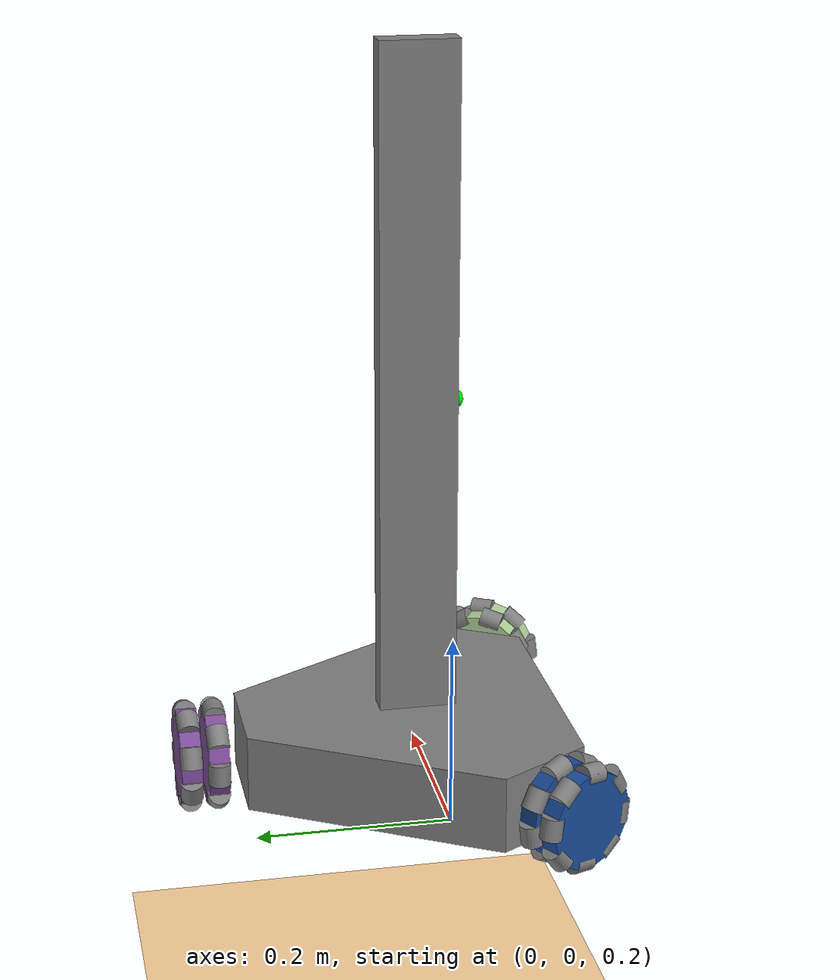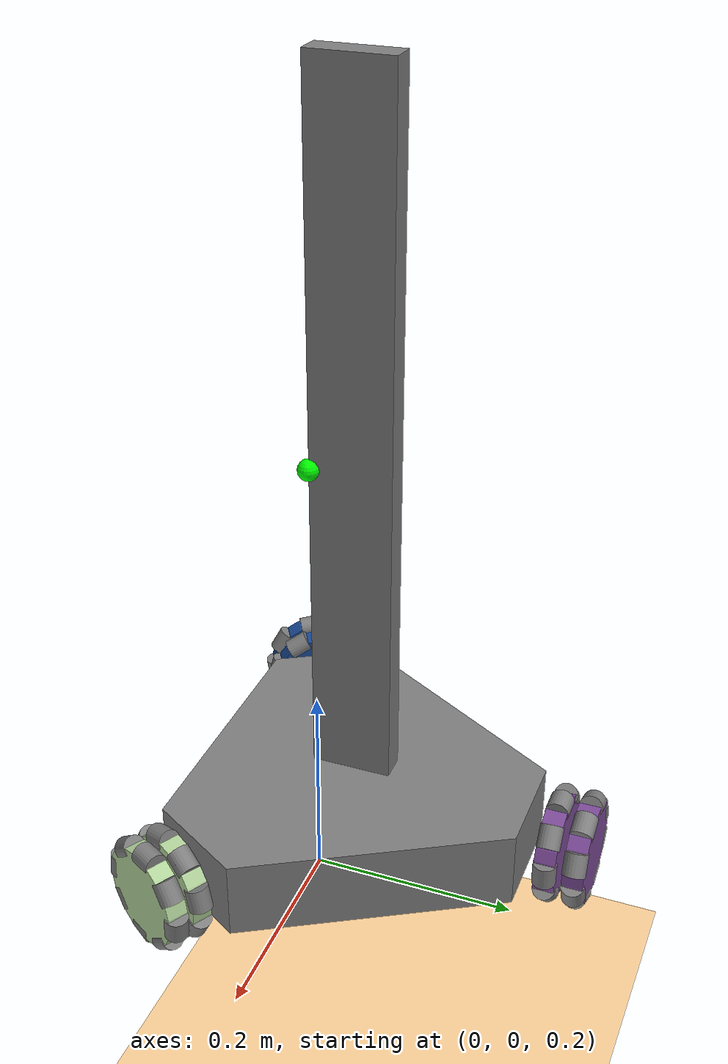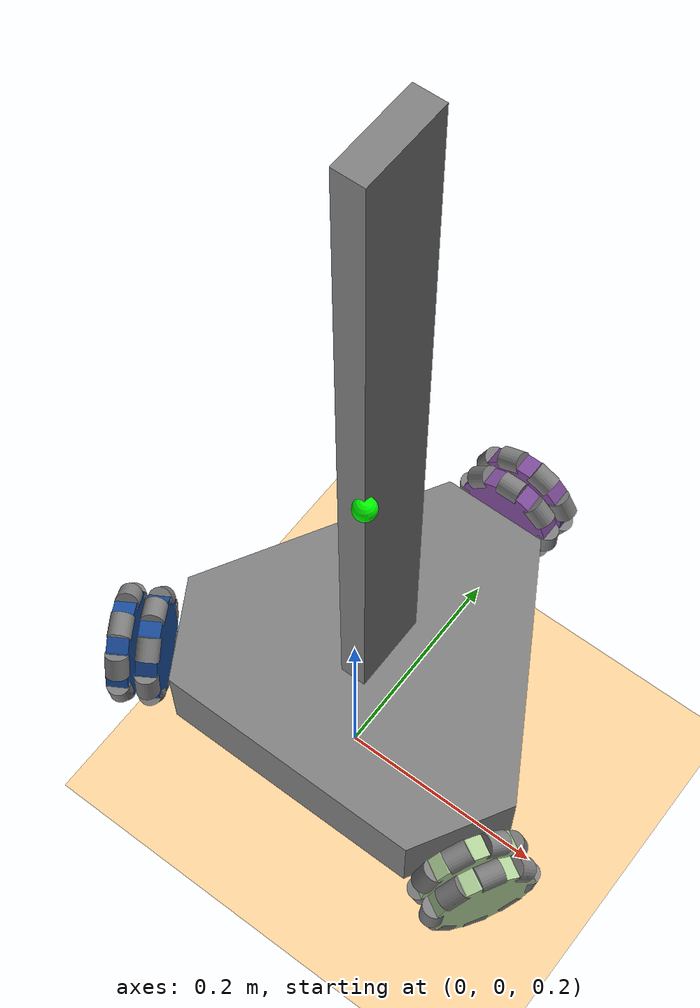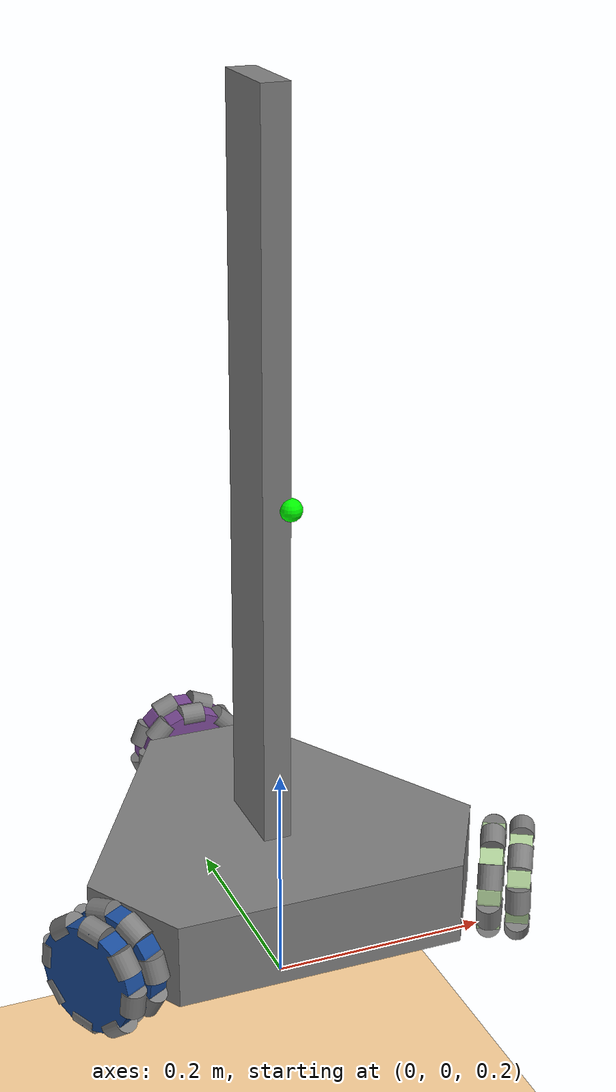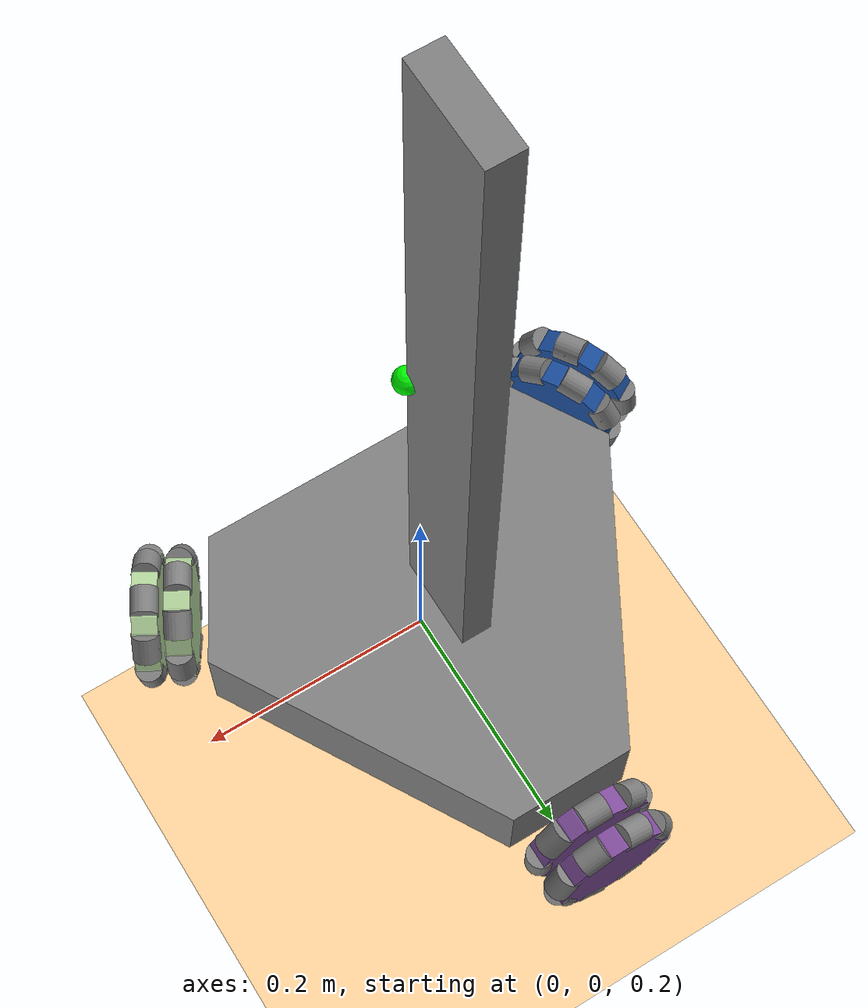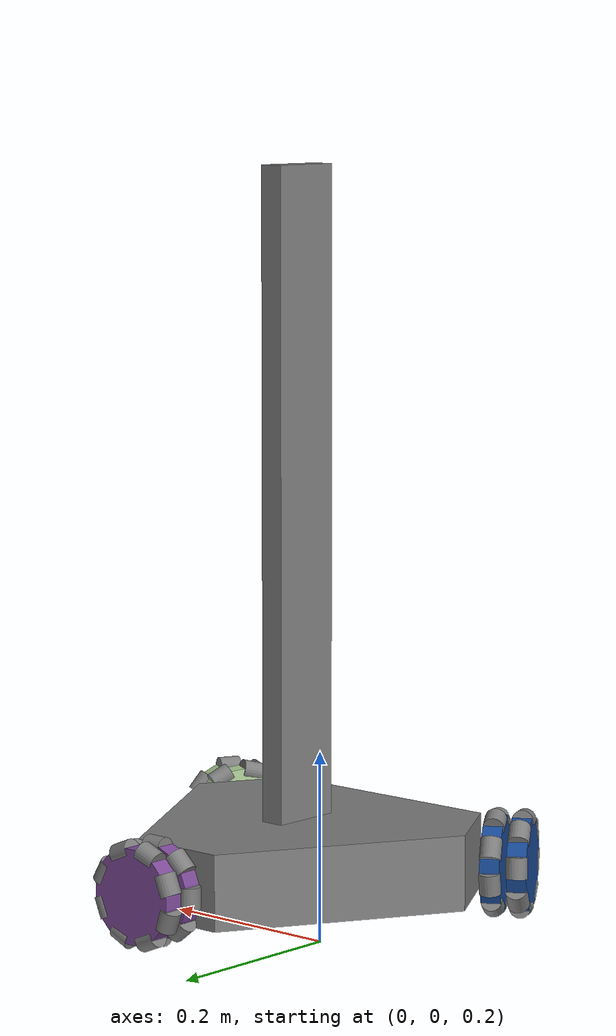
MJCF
<?xml version="1.0" encoding="utf-8"?>
<mujoco model="triangular_base">

	<!-- set some defaults for units and lighting -->
	<compiler angle="degree" meshdir="./stl_exports/"/>

	<option timestep=".00175"/>

	<!-- import our stl files -->
	<asset>
		<mesh name="baseplate" file="baseplate_robot-new.stl" />
		<mesh name="elevator" file="elevator-collapsed-new.stl" />
		<mesh name="wheel" file="wheel_for_mujoco.stl" />
	</asset>

	<!-- define our robot model -->
	<worldbody>
		<!-- set up a light pointing down on the robot -->
		<light directional="true" pos="-0.5 0.5 3" dir="0 0 -1" />
		<camera name="track_camera" mode="targetbodycom" target="base" euler="0 0 0" fovy="80" pos="0 0 2" />
		<!-- add a floor so we don't stare off into the abyss -->
		<geom name="floor" pos="0 0 0" size="50 50 50" type="plane" rgba="1 0.83 0.61 0.5"/>

		<!-- start building our model -->
		<body name="base" pos="0 0 -0.7">
			<joint name="joint_base" type="free" axis="0 0 1" frictionloss="1" damping="0.001" stiffness="0.2"/>
			<geom name="baseplate_robot" type="mesh" mesh="baseplate" pos="0 0 1" friction="0.5" />
			<inertial pos="-.05 0 0.0133" mass="5" diaginertia=".5 .5 1"/>

			<body name="elevator" pos=".01 0 1">
				<joint name="slide_y" type="slide" axis="0 1 0" range="-.001 .001"/>
				<geom name="elevator" type="mesh" mesh="elevator"/>
				<inertial pos="0 0 0.345" mass="0.2" diaginertia=".5 .5 1"/>
				<!-- Optional: Adding a site to specify sensor location -->
				<site name="base_site" pos="0 0 .35" size="0.01" type="sphere" rgba="0 1 0 1"/>
			</body>

			<!-- Attach wheels to the main body -->
			<!--							cos(15 degree)	sin(15 degree)-->
			<body name="wheel_1_body" pos=".175 -.07 1" quat="0.5 1 0 .866">
				<joint name="joint1" type="hinge" axis="0 0 -1" damping=".05"/>
				<geom type="cylinder" size=".048 .01" rgba=".7 0.83 0.61 1" />

				<inertial pos="0 0 0" mass=".096" diaginertia="0.5 0.5 1"/>

				<body name="wheel_1_omni0" pos="0 -.0435 0" quat="0 -1 0 1" >
					<joint name="joint1_omni0" type="hinge" axis="0 0 1" damping="0.001" frictionloss="0.3"/>
					<geom type="cylinder" size=".011 .011 .011" contype="1" conaffinity="0"/>

					<inertial pos="0 0 0" mass="0.001" diaginertia="0.00001 0.00001 0.00001"/>

				</body>

				<body name="wheel_1_omni1" pos="0 .0435 0" quat="0 -1 0 1">
					<joint name="joint1_omni1" type="hinge" axis="0 0 1" damping="0.001" frictionloss="0.3"/>
					<geom type="cylinder" size=".011 .011 .011" contype="1" conaffinity="0"/>

					<inertial pos="0 0 0" mass="0.001" diaginertia="0.00001 0.00001 0.00001"/>

				</body>

				<body name="wheel_1_omni2" pos=".0435 0 0" quat="1 1 0 0">
					<joint name="joint1_omni2" type="hinge" axis="0 0 1" damping="0.001" frictionloss="0.3"/>
					<geom type="cylinder" size=".011 .011 .011" contype="1" conaffinity="0"/>

					<inertial pos="0 0 0" mass=".001" diaginertia="0.00001 0.00001 0.00001"/>

				</body>

				<body name="wheel_1_omni3" pos="-.0435 0 0" quat="1 1 0 0">
					<joint name="joint1_omni3" type="hinge" axis="0 0 1" damping="0.001" frictionloss="0.3"/>
					<geom type="cylinder" size=".011 .011 .011" contype="1" conaffinity="0"/>

					<inertial pos="0 0 0" mass="0.001" diaginertia="0.00001 0.00001 0.00001"/>

				</body>

				<body name="wheel_1_omni4" pos="-.0312 -.0312 0" quat="0.676 0.227 0.661 -.233">
					<joint name="joint1_omni4" type="hinge" axis="0 0 1" damping="0.0001"/>
					<geom type="cylinder" size=".011 .011 .011" contype="1" conaffinity="0"/>

					<inertial pos="0 0 0" mass="0.001" diaginertia="0.00001 0.00001 0.00001"/>

				</body>

				<body name="wheel_1_omni5" pos=".0312 -.0312 0" quat="0.661 -0.268 0.645 .274">
					<joint name="joint1_omni5" type="hinge" axis="0 0 1" damping="0.001" frictionloss="0.3"/>
					<geom type="cylinder" size=".011 .011 .011" contype="1" conaffinity="0"/>

					<inertial pos="0 0 0" mass="0.001" diaginertia="0.00001 0.00001 0.00001"/>

				</body>

				<body name="wheel_1_omni6" pos=".0312 .0312 0" quat="0.276 -0.642 0.268 .663">
					<joint name="joint1_omni6" type="hinge" axis="0 0 1" damping="0.001" frictionloss="0.3"/>
					<geom type="cylinder" size=".011 .011 .011" contype="1" conaffinity="0"/>

					<inertial pos="0 0 0" mass="0.001" diaginertia="0.00001 0.00001 0.00001"/>

				</body>

				<body name="wheel_1_omni7" pos="-.0312 .0312 0" quat="-0.276 -0.642 -0.268 .663">
					<joint name="joint1_omni7" type="hinge" axis="0 0 1" damping="0.001" frictionloss="0.3"/>
					<geom type="cylinder" size=".011 .011 .011" contype="1" conaffinity="0"/>

					<inertial pos="0 0 0" mass="0.001" diaginertia="0.00001 0.00001 0.00001"/>

				</body>

				<!-- Attached Wheel -->

				<body name="wheel_1_body1" pos="0 0 0.025" quat="0.195 0 0 0.975">
					<geom type="cylinder" size=".048 .01" rgba=".7 0.83 0.61 1" />

					<inertial pos="0 0 0" mass=".096" diaginertia="0.5 0.5 1"/>

					<body name="wheel_1_1omni0" pos="0 -.0435 0" quat="0 -1 0 1">
						<joint name="joint1_1omni0" type="hinge" axis="0 0 1" damping="0.001" frictionloss="0.3"/>
						<geom type="cylinder" size=".011 .011 .011" contype="1" conaffinity="0" />

						<inertial pos="0 0 0" mass=".001" diaginertia="0.00001 0.00001 0.00001"/>

					</body>

					<body name="wheel_1_1omni1" pos="0 .0435 0" quat="0 -1 0 1">
						<joint name="joint1_1omni1" type="hinge" axis="0 0 1" damping="0.001" frictionloss="0.3"/>
						<geom type="cylinder" size=".011 .011 .011" contype="1" conaffinity="0"/>

						<inertial pos="0 0 0" mass="0.001" diaginertia="0.00001 0.00001 0.00001"/>
					</body>

					<body name="wheel_1_1omni2" pos=".0435 0 0" quat="1 1 0 0">
						<joint name="joint1_1omni2" type="hinge" axis="0 0 1" damping="0.001" frictionloss="0.3"/>
						<geom type="cylinder" size=".011 .011 .011" contype="1" conaffinity="0"/>

						<inertial pos="0 0 0" mass="0.001" diaginertia="0.00001 0.00001 0.00001"/>

					</body>

					<body name="wheel_1_1omni3" pos="-.0435 0 0" quat="1 1 0 0">
						<joint name="joint1_1omni3" type="hinge" axis="0 0 1" damping="0.001" frictionloss="0.3"/>
						<geom type="cylinder" size=".011 .011 .011" contype="1" conaffinity="0"/>

						<inertial pos="0 0 0" mass="0.001" diaginertia="0.00001 0.00001 0.00001"/>

					</body>

					<body name="wheel_1_1omni4" pos="-.0312 -.0312 0" quat="0.676 0.227 0.661 -.233">
						<joint name="joint1_1omni4" type="hinge" axis="0 0 1" damping="0.001" frictionloss="0.3"/>
						<geom type="cylinder" size=".011 .011 .011" contype="1" conaffinity="0"/>

						<inertial pos="0 0 0" mass="0.001" diaginertia="0.00001 0.00001 0.00001"/>

					</body>

					<body name="wheel_1_1omni5" pos=".0312 -.0312 0" quat="0.661 -0.268 0.645 .274">
						<joint name="joint1_1omni5" type="hinge" axis="0 0 1" damping="0.001" frictionloss="0.3"/>
						<geom type="cylinder" size=".011 .011 .011" contype="1" conaffinity="0"/>

						<inertial pos="0 0 0" mass="0.001" diaginertia="0.00001 0.00001 0.00001"/>

					</body>

					<body name="wheel_1_1omni6" pos=".0312 .0312 0" quat="0.276 -0.642 0.268 .663">
						<joint name="joint1_1omni6" type="hinge" axis="0 0 1" damping="0.001" frictionloss="0.3"/>
						<geom type="cylinder" size=".011 .011 .011" contype="1" conaffinity="0"/>

						<inertial pos="0 0 0" mass="0.001" diaginertia="0.00001 0.00001 0.00001"/>

					</body>

					<body name="wheel_1_1omni7" pos="-.0312 .0312 0" quat="-0.276 -0.642 -0.268 .663">
						<joint name="joint1_1omni7" type="hinge" axis="0 0 1" damping="0.001" frictionloss="0.3"/>
						<geom type="cylinder" size=".011 .011 .011" contype="1" conaffinity="0"/>

						<inertial pos="0 0 0" mass="0.001" diaginertia="0.00001 0.00001 0.00001"/>

					</body>

				</body>

			</body>

			<body name="wheel_2_body" pos="0 .24 1" quat="1 1 0 0"> <!-- This quat makes cylinder parallel with 3D y-axis and straight up -->
				<joint name="joint2" type="hinge" axis="0 0 1" damping=".05"/> <!-- GOOD -->
				<geom type="cylinder" size=".048 .01" rgba=".5 0.3 0.61 1" />
				<inertial pos="0 0 0.9" mass=".096" diaginertia="0.5 0.5 1"/>

				<body name="wheel_2_omni0" pos="0 -.0435 0" quat="0 -1 0 1">
					<joint name="joint2_omni0" type="hinge" axis="0 0 1" damping="0.001" frictionloss="0.3"/>
					<geom type="cylinder" size=".011 .011 .011" contype="1" conaffinity="0"/>

					<inertial pos="0 0 0" mass="0.001" diaginertia="0.00001 0.00001 0.00001"/>

				</body>

				<body name="wheel_2_omni1" pos="0 .0435 0" quat="0 -1 0 1">
					<joint name="joint2_omni1" type="hinge" axis="0 0 1" damping="0.001" frictionloss="0.3"/>
					<geom type="cylinder" size=".011 .011 .011" contype="1" conaffinity="0"/>

					<inertial pos="0 0 0" mass="0.001" diaginertia="0.00001 0.00001 0.00001"/>

				</body>

				<body name="wheel_2_omni2" pos=".0435 0 0" quat="1 1 0 0">
					<joint name="joint2_omni2" type="hinge" axis="0 0 1" damping="0.001" frictionloss="0.3"/>
					<geom type="cylinder" size=".011 .011 .011" contype="1" conaffinity="0"/>

					<inertial pos="0 0 0" mass="0.001" diaginertia="0.00001 0.00001 0.00001"/>

				</body>

				<body name="wheel_2_omni3" pos="-.0435 0 0" quat="1 1 0 0">
					<joint name="joint2_omni3" type="hinge" axis="0 0 1" damping="0.001" frictionloss="0.3"/>
					<geom type="cylinder" size=".011 .011 .011" contype="1" conaffinity="0"/>

					<inertial pos="0 0 0" mass="0.001" diaginertia="0.00001 0.00001 0.00001"/>

				</body>

				<body name="wheel_2_omni4" pos="-.0312 -.0312 0" quat="0.676 0.227 0.661 -.233">
					<joint name="joint2_omni4" type="hinge" axis="0 0 1" damping="0.001" frictionloss="0.3"/>
					<geom type="cylinder" size=".011 .011 .011" contype="1" conaffinity="0"/>

					<inertial pos="0 0 0" mass="0.001" diaginertia="0.00001 0.00001 0.00001"/>

				</body>

				<body name="wheel_2_omni5" pos=".0312 -.0312 0" quat="0.661 -0.268 0.645 .274">
					<joint name="joint2_omni5" type="hinge" axis="0 0 1" damping="0.001" frictionloss="0.3"/>
					<geom type="cylinder" size=".011 .011 .011" contype="1" conaffinity="0"/>

					<inertial pos="0 0 0" mass="0.001" diaginertia="0.00001 0.00001 0.00001"/>

				</body>

				<body name="wheel_2_omni6" pos=".0312 .0312 0" quat="0.276 -0.642 0.268 .663">
					<joint name="joint2_omni6" type="hinge" axis="0 0 1" damping="0.001" frictionloss="0.3"/>
					<geom type="cylinder" size=".011 .011 .011" contype="1" conaffinity="0"/>

					<inertial pos="0 0 0" mass="0.001" diaginertia="0.00001 0.00001 0.00001"/>

				</body>

				<body name="wheel_2_omni7" pos="-.0312 .0312 0" quat="-0.276 -0.642 -0.268 .663">
					<joint name="joint2_omni7" type="hinge" axis="0 0 1" damping="0.001" frictionloss="0.3"/>
					<geom type="cylinder" size=".011 .011 .011" contype="1" conaffinity="0"/>

					<inertial pos="0 0 0" mass="0.001" diaginertia="0.00001 0.00001 0.00001"/>

				</body>

				<!-- Second Wheel -->

				<!-- Second Second Wheel -->

				<body name="wheel_2_body1" pos="0 0 -0.027" quat="0.195 0 0 0.975">
					<geom type="cylinder" size=".048 .01" rgba=".5 0.3 0.61 1" />

					<inertial pos="0 0 0.9" mass=".096" diaginertia="0.5 0.5 1"/>

					<body name="wheel_2_1omni0" pos="0 -.0435 0" quat="0 -1 0 1">
						<joint name="joint2_1omni0" type="hinge" axis="0 0 1" damping="0.001" frictionloss="0.3"/>
						<geom type="cylinder" size=".011 .011 .011" contype="1" conaffinity="0"/>

						<inertial pos="0 0 0" mass="0.001" diaginertia="0.00001 0.00001 0.00001"/>

					</body>

					<body name="wheel_2_1omni1" pos="0 .0435 0" quat="0 -1 0 1">
						<joint name="joint2_1omni1" type="hinge" axis="0 0 1" damping="0.001" frictionloss="0.3"/>
						<geom type="cylinder" size=".011 .011 .011" contype="1" conaffinity="0"/>

						<inertial pos="0 0 0" mass="0.001" diaginertia="0.00001 0.00001 0.00001"/>
					</body>

					<body name="wheel_2_1omni2" pos=".0435 0 0" quat="1 1 0 0">
						<joint name="joint2_1omni2" type="hinge" axis="0 0 1" damping="0.001" frictionloss="0.3"/>
						<geom type="cylinder" size=".011 .011 .011" contype="1" conaffinity="0"/>

						<inertial pos="0 0 0" mass="0.001" diaginertia="0.00001 0.00001 0.00001"/>

					</body>

					<body name="wheel_2_1omni3" pos="-.0435 0 0" quat="1 1 0 0">
						<joint name="joint2_1omni3" type="hinge" axis="0 0 1" damping="0.001" frictionloss="0.3"/>
						<geom type="cylinder" size=".011 .011 .011" contype="1" conaffinity="0"/>

						<inertial pos="0 0 0" mass="0.001" diaginertia="0.00001 0.00001 0.00001"/>

					</body>

					<body name="wheel_2_1omni4" pos="-.0312 -.0312 0" quat="0.676 0.227 0.661 -.233">
						<joint name="joint2_1omni4" type="hinge" axis="0 0 1" damping="0.001" frictionloss="0.3"/>
						<geom type="cylinder" size=".011 .011 .011" contype="1" conaffinity="0"/>

						<inertial pos="0 0 0" mass="0.001" diaginertia="0.00001 0.00001 0.00001"/>

					</body>

					<body name="wheel_2_1omni5" pos=".0312 -.0312 0" quat="0.661 -0.268 0.645 .274">
						<joint name="joint2_1omni5" type="hinge" axis="0 0 1" damping="0.001" frictionloss="0.3"/>
						<geom type="cylinder" size=".011 .011 .011" contype="1" conaffinity="0"/>

						<inertial pos="0 0 0" mass="0.001" diaginertia="0.00001 0.00001 0.00001"/>

					</body>

					<body name="wheel_2_1omni6" pos=".0312 .0312 0" quat="0.276 -0.642 0.268 .663">
						<joint name="joint2_1omni6" type="hinge" axis="0 0 1" damping="0.001" frictionloss="0.3"/>
						<geom type="cylinder" size=".011 .011 .011" contype="1" conaffinity="0"/>

						<inertial pos="0 0 0" mass="0.001" diaginertia="0.00001 0.00001 0.00001"/>

					</body>

					<body name="wheel_2_1omni7" pos="-.0312 .0312 0" quat="-0.276 -0.642 -0.268 .663">
						<joint name="joint2_1omni7" type="hinge" axis="0 0 1" damping="0.001" frictionloss="0.3"/>
						<geom type="cylinder" size=".011 .011 .011" contype="1" conaffinity="0"/>

						<inertial pos="0 0 0" mass="0.001" diaginertia="0.00001 0.00001 0.00001"/>

					</body>
				</body>
			</body>

			<body name="wheel_3_body" pos="-.175 -.07 1" quat="-0.5 1 0 .866">
				<joint name="joint3" type="hinge" axis="0 0 1" damping=".05" />
				<geom type="cylinder" size=".048 .01" rgba=".1 0.3 0.61 1" />
				<inertial pos="0 0 0.9" mass=".096" diaginertia="0.5 0.5 1"/>

				<body name="wheel_3_omni0" pos="0 -.0435 0" quat="0 -1 0 1">
					<joint name="joint3_omni0" type="hinge" axis="0 0 1" damping="0.001" frictionloss="0.3"/>
					<geom type="cylinder" size=".011 .011 .011" contype="1" conaffinity="0"/>

					<inertial pos="0 0 0" mass="0.001" diaginertia="0.00001 0.00001 0.00001"/>

				</body>

				<body name="wheel_3_omni1" pos="0 .0435 0" quat="0 -1 0 1">
					<joint name="joint3_omni1" type="hinge" axis="0 0 1" damping="0.001" frictionloss="0.3"/>
					<geom type="cylinder" size=".011 .011 .011" contype="1" conaffinity="0"/>

					<inertial pos="0 0 0" mass="0.001" diaginertia="0.00001 0.00001 0.00001"/>

				</body>

				<body name="wheel_3_omni2" pos=".0435 0 0" quat="1 1 0 0">
					<joint name="joint3_omni2" type="hinge" axis="0 0 1" damping="0.001" frictionloss="0.3"/>
					<geom type="cylinder" size=".011 .011 .011" contype="1" conaffinity="0"/>

					<inertial pos="0 0 0" mass="0.001" diaginertia="0.00001 0.00001 0.00001"/>

				</body>

				<body name="wheel_3_omni3" pos="-.0435 0 0" quat="1 1 0 0">
					<joint name="joint3_omni3" type="hinge" axis="0 0 1" damping="0.001" frictionloss="0.3"/>
					<geom type="cylinder" size=".011 .011 .011" contype="1" conaffinity="0"/>

					<inertial pos="0 0 0" mass="0.001" diaginertia="0.00001 0.00001 0.00001"/>

				</body>

				<body name="wheel_3_omni4" pos="-.0312 -.0312 0" quat="0.676 0.227 0.661 -.233">
					<joint name="joint3_omni4" type="hinge" axis="0 0 1" damping="0.001" frictionloss="0.3"/>
					<geom type="cylinder" size=".011 .011 .011" contype="1" conaffinity="0"/>

					<inertial pos="0 0 0" mass="0.001" diaginertia="0.00001 0.00001 0.00001"/>

				</body>

				<body name="wheel_3_omni5" pos=".0312 -.0312 0" quat="0.661 -0.268 0.645 .274">
					<joint name="joint3_omni5" type="hinge" axis="0 0 1" damping="0.001" frictionloss="0.3"/>
					<geom type="cylinder" size=".011 .011 .011" contype="1" conaffinity="0"/>

					<inertial pos="0 0 0" mass="0.001" diaginertia="0.00001 0.00001 0.00001"/>

				</body>

				<body name="wheel_3_omni6" pos=".0312 .0312 0" quat="0.276 -0.642 0.268 .663">
					<joint name="joint3_omni6" type="hinge" axis="0 0 1" damping="0.001" frictionloss="0.3"/>
					<geom type="cylinder" size=".011 .011 .011" contype="1" conaffinity="0"/>

					<inertial pos="0 0 0" mass="0.001" diaginertia="0.00001 0.00001 0.00001"/>

				</body>

				<body name="wheel_3_omni7" pos="-.0312 .0312 0" quat="-0.276 -0.642 -0.268 .663">
					<joint name="joint3_omni7" type="hinge" axis="0 0 1" damping="0.001" frictionloss="0.3"/>
					<geom type="cylinder" size=".011 .011 .011" contype="1" conaffinity="0"/>

					<inertial pos="0 0 0" mass="0.001" diaginertia="0.00001 0.00001 0.00001"/>

				</body>

				<!-- Second Wheel -->

				<!-- Second Wheel -->

			<body name="wheel_3_body1" pos="0 0 -0.027" quat="0.195 0 0 0.975">
				<geom type="cylinder" size=".048 .01" rgba=".1 0.3 0.61 1"/>

				<inertial pos="0 0 0.9" mass=".096" diaginertia="0.5 0.5 1"/>

				<body name="wheel_3_1omni0" pos="0 -.0435 0" quat="0 -1 0 1">
					<joint name="joint3_1omni0" type="hinge" axis="0 0 1" damping="0.001" frictionloss="0.3"/>
					<geom type="cylinder" size=".011 .011 .011" contype="1" conaffinity="0"/>

					<inertial pos="0 0 0" mass="0.001" diaginertia="0.00001 0.00001 0.00001"/>

				</body>

				<body name="wheel_3_1omni1" pos="0 .0435 0" quat="0 -1 0 1">
					<joint name="joint3_1omni1" type="hinge" axis="0 0 1" damping="0.001" frictionloss="0.3"/>
					<geom type="cylinder" size=".011 .011 .011" contype="1" conaffinity="0"/>

					<inertial pos="0 0 0" mass="0.001" diaginertia="0.00001 0.00001 0.00001"/>
				</body>

				<body name="wheel_3_1omni2" pos=".0435 0 0" quat="1 1 0 0">
					<joint name="joint3_1omni2" type="hinge" axis="0 0 1" damping="0.001" frictionloss="0.3"/>
					<geom type="cylinder" size=".011 .011 .011" contype="1" conaffinity="0"/>

					<inertial pos="0 0 0" mass="0.001" diaginertia="0.00001 0.00001 0.00001"/>
				</body>

				<body name="wheel_3_1omni3" pos="-.0435 0 0" quat="1 1 0 0">
					<joint name="joint3_1omni3" type="hinge" axis="0 0 1" damping="0.001" frictionloss="0.3"/>
			 		<geom type="cylinder" size=".011 .011 .011" contype="1" conaffinity="0"/>

					<inertial pos="0 0 0" mass="0.001" diaginertia="0.00001 0.00001 0.00001"/>
				</body>

				<body name="wheel_3_1omni4" pos="-.0312 -.0312 0" quat="0.676 0.227 0.661 -.233">
					<joint name="joint3_1omni4" type="hinge" axis="0 0 1" damping="0.001" frictionloss="0.3"/>
					<geom type="cylinder" size=".011 .011 .011" contype="1" conaffinity="0"/>

					<inertial pos="0 0 0" mass="0.001" diaginertia="0.00001 0.00001 0.00001"/>

				</body>

				<body name="wheel_3_1omni5" pos=".0312 -.0312 0" quat="0.661 -0.268 0.645 .274">
					<joint name="joint3_1omni5" type="hinge" axis="0 0 1" damping="0.001" frictionloss="0.3"/>
					<geom type="cylinder" size=".011 .011 .011" contype="1" conaffinity="0"/>

					<inertial pos="0 0 0" mass="0.001" diaginertia="0.00001 0.00001 0.00001"/>

				</body>

				<body name="wheel_3_1omni6" pos=".0312 .0312 0" quat="0.276 -0.642 0.268 .663">
					<joint name="joint3_1omni6" type="hinge" axis="0 0 1" damping="0.001" frictionloss="0.3"/>
					<geom type="cylinder" size=".011 .011 .011" contype="1" conaffinity="0"/>

					<inertial pos="0 0 0" mass="0.001" diaginertia="0.00001 0.00001 0.00001"/>

				</body>

				<body name="wheel_3_1omni7" pos="-.0312 .0312 0" quat="-0.276 -0.642 -0.268 .663">
					<joint name="joint3_1omni7" type="hinge" axis="0 0 1" damping="0.001" frictionloss="0.3"/>
					<geom type="cylinder" size=".011 .011 .011" contype="1" conaffinity="0"/>

					<inertial pos="0 0 0" mass="0.001" diaginertia="0.00001 0.00001 0.00001"/>

				</body>

			</body>

			</body>
		</body>
	</worldbody>

	<!-- attach actuators to joints -->
	<actuator>
		<velocity name="joint1_motor" joint="joint1" ctrlrange="-32.7 32.7" ctrllimited="true" gear="19.2" kv="3"/>

		<velocity name="joint2_motor" joint="joint2" ctrlrange="-32.7 32.7" ctrllimited="true" gear="19.2" kv="3"/>

		<velocity name="joint3_motor" joint="joint3" ctrlrange="-32.7 32.7" ctrllimited="true" gear="19.2" kv="3"/>

	</actuator>

	<sensor>
		<actuatorfrc name="joint1_motor" actuator="joint1_motor"/>
		<actuatorfrc name="joint2_motor" actuator="joint2_motor"/>
		<actuatorfrc name="joint3_motor" actuator="joint3_motor"/>

		<jointactuatorfrc name="joint1" joint="joint1"/>
		<jointactuatorfrc name="joint2" joint="joint2"/>
		<jointactuatorfrc name="joint3" joint="joint3"/>

	</sensor>

</mujoco>
